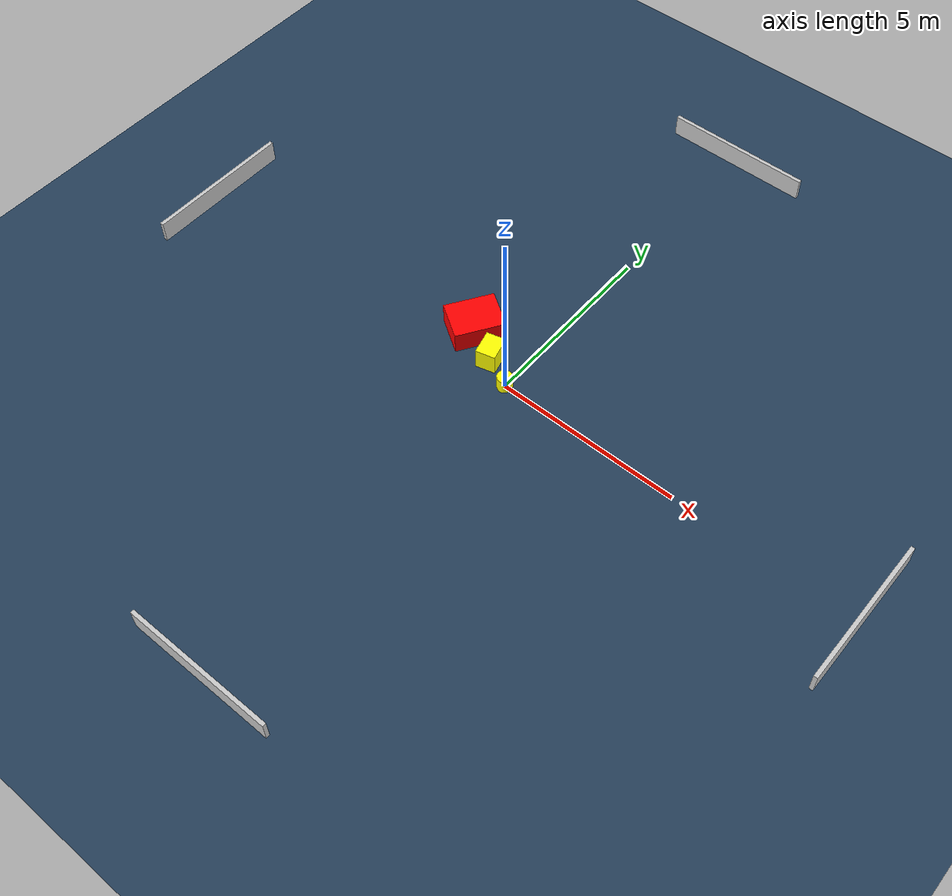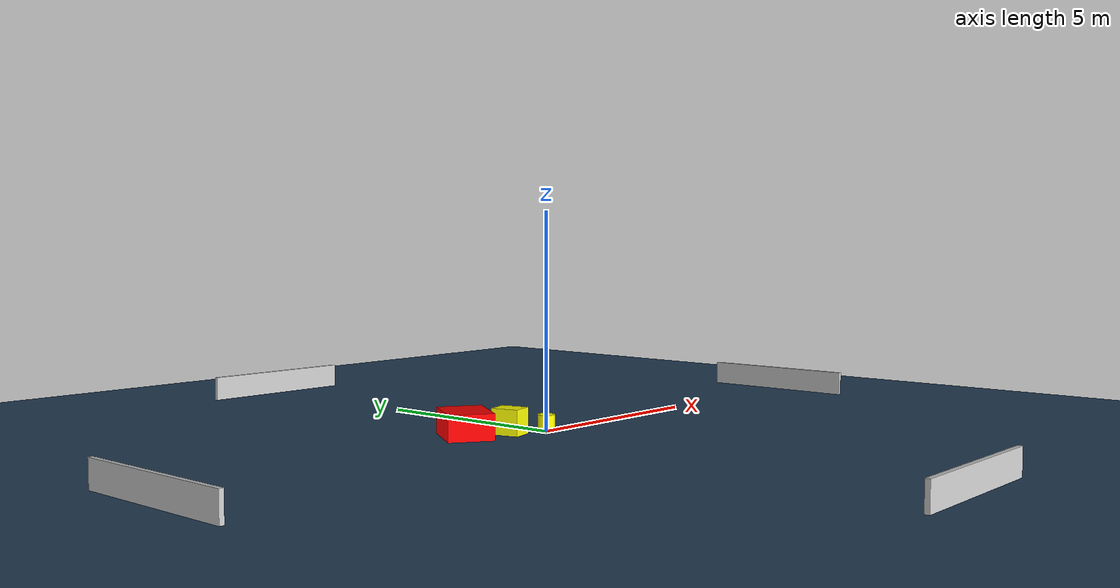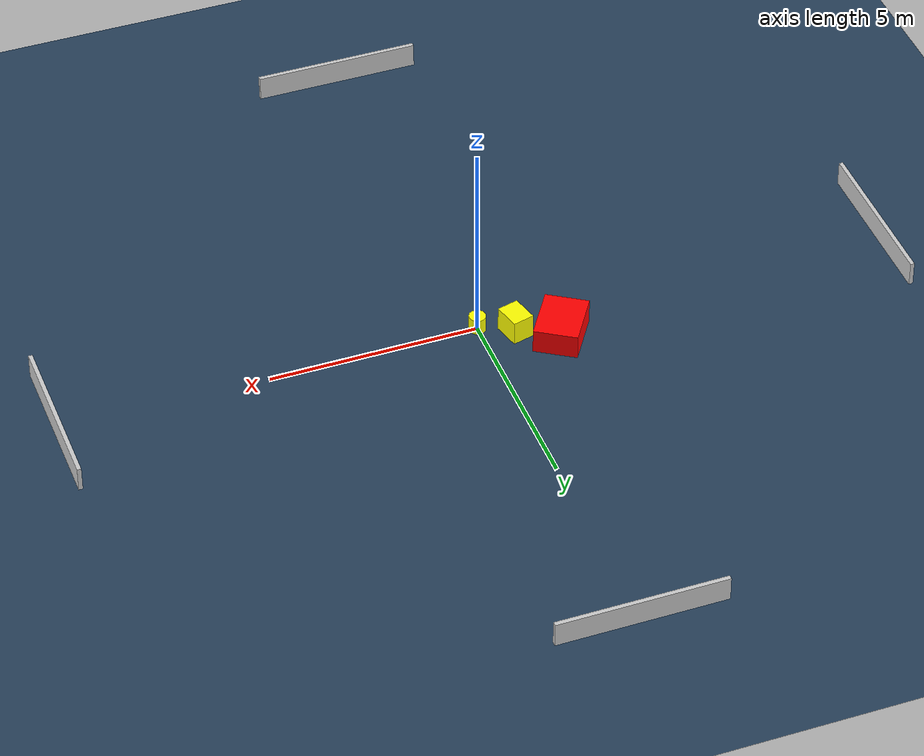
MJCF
<?xml version="1.0" ?>
<mujoco model="generated_environment">
  <option timestep="0.01" integrator="RK4" cone="elliptic"/>
  <default>
    <geom density="1"/>
  </default>
  <asset>
    <texture builtin="gradient" height="3072" name="skybox" rgb1="0.3 0.5 0.7" rgb2="0 0 0" type="skybox" width="512"/>
    <texture builtin="checker" height="300" name="groundplane" rgb1="0.2 0.3 0.4" rgb2="0.1 0.2 0.3" type="2d" width="300"/>
    <material name="groundplane" reflectance="0.2" texrepeat="5 5" texture="groundplane"/>
  </asset>
  <worldbody>
    <light dir="0 0 -1" directional="true" pos="0 0 1.5"/>
    <geom condim="3" friction="0.5 0.005 0.001" material="groundplane" name="floor" pos="0 0 0" size="0 0 0.05" type="plane"/>
    <body name="walls">
      <geom name="wall_1" condim="4" pos="-10.0 0.0 0.3" rgba="0.800000011920929 0.800000011920929 0.800000011920929 1.0" size="0.05 2.0 0.3" type="box"/>
      <geom name="wall_2" condim="4" pos="10.0 0.0 0.3" rgba="0.800000011920929 0.800000011920929 0.800000011920929 1.0" size="0.05 2.0 0.3" type="box"/>
      <geom name="wall_3" condim="4" pos="0.0 -10.0 0.3" rgba="0.800000011920929 0.800000011920929 0.800000011920929 1.0" size="2.0 0.05 0.3" type="box"/>
      <geom name="wall_4" condim="4" pos="0.0 10.0 0.3" rgba="0.800000011920929 0.800000011920929 0.800000011920929 1.0" size="2.0 0.05 0.3" type="box"/>
    </body>
    <body name="robot">
      <joint name="joint_x" type="slide" pos="0 0 0" axis="1 0 0"/>
      <joint name="joint_y" type="slide" pos="0 0 0" axis="0 1 0"/>
      <geom name="robot" type="cylinder" pos="0.0 0.0 0.2" size="0.2 0.2 0.0" mass="5.0" friction="1.0 0.005 0.0001" condim="4" rgba="1.0 1.0 0.0 1.0"/>
    </body>
    <body name="obstacle_1_movable">
      <geom name="obstacle_1_movable" condim="4" pos="-0.7788650509826871 0.4068156387300266 0.3" euler="0 0 194.22633592218503" friction="0.0 0.005 0.001" rgba="1.0 1.0 0.0 1.0" size="0.2614122226646183 0.3256844123119204 0.3" type="box" mass="0.1"/>
      <joint type="free"/>
    </body>
    <body name="obstacle_2_static">
      <geom name="obstacle_2_static" condim="4" pos="-1.711156257775596 0.8893376968701134 0.3" euler="0 0 147.06569343464048" friction="0.0 0.005 0.001" rgba="1.0 0.0 0.0 1.0" size="0.5206898623932157 0.6637916649208071 0.3" type="box"/>
    </body>
  </worldbody>
  <actuator>
    <motor name="actuator_x" joint="joint_x" gear="1" ctrlrange="-1 1"/>
    <motor name="actuator_y" joint="joint_y" gear="1" ctrlrange="-1 1"/>
  </actuator>
</mujoco>
